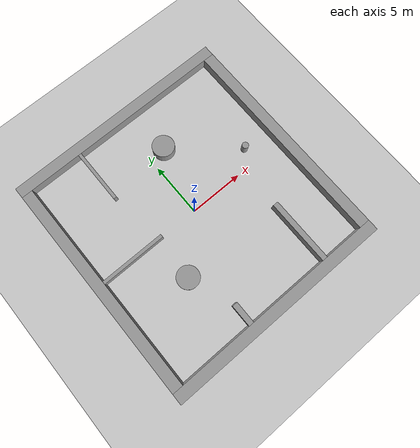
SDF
<sdf version="1.6">
 <world name="default">
  <light name="sun" type="directional">
   <pose>0 0 10 0 -0 0</pose>
   <diffuse>0.8 0.8 0.8 1</diffuse>
   <specular>0.1 0.1 0.1 1</specular>
   <attenuation>
    <range>1000</range>
    <constant>0.9</constant>
    <linear>0.01</linear>
    <quadratic>0.001</quadratic>
   </attenuation>
   <direction>-0.5 0.5 -1</direction>
  </light>
  <model name="ground_plane">
   <static>1</static>
   <link name="link">
    <collision name="collision">
     <geometry><plane><normal>0 0 1</normal><size>100 100</size></plane></geometry>
     <surface><friction><ode><mu>100</mu><mu2>50</mu2></ode></friction></surface>
    </collision>
    <visual name="visual">
     <cast_shadows>0</cast_shadows>
     <geometry><plane><normal>0 0 1</normal><size>100 100</size></plane></geometry>
     <material>
      <script><uri>file://media/materials/scripts/gazebo.material</uri><name>Gazebo/Grey</name></script>
     </material>
    </visual>
    <gravity>0</gravity>
   </link>
  </model>
  <gravity>0 0 -9.8</gravity>
  <magnetic_field>6e-06 2.3e-05 -4.2e-05</magnetic_field>
  <atmosphere type="adiabatic"/>
  <physics name="default_physics" default="0" type="ode">
   <max_step_size>0.001</max_step_size>
   <real_time_factor>1</real_time_factor>
   <real_time_update_rate>1000</real_time_update_rate>
  </physics>
  <scene><ambient>0.4 0.4 0.4 1</ambient><background>0.7 0.7 0.7 1</background><shadows>1</shadows></scene>
  <spherical_coordinates>
   <surface_model>EARTH_WGS84</surface_model>
   <latitude_deg>0</latitude_deg>
   <longitude_deg>0</longitude_deg>
   <elevation>0</elevation>
   <heading_deg>0</heading_deg>
  </spherical_coordinates>
  <model name="left_wall">
   <pose>10 0 0.5 0 -0 0</pose>
   <link name="link">
    <inertial>
     <mass>100</mass>
     <inertia><ixx>16.6667</ixx><ixy>0</ixy><ixz>0</ixz><iyy>16.6667</iyy><iyz>0</iyz><izz>16.6667</izz></inertia>
    </inertial>
    <collision name="collision"><geometry><box><size>1 20 1</size></box></geometry></collision>
    <visual name="visual">
     <geometry><box><size>1 20 1</size></box></geometry>
     <material>
      <script><name>Gazebo/Grey</name><uri>file://media/materials/scripts/gazebo.material</uri></script>
     </material>
    </visual>
    <gravity>0</gravity>
   </link>
  </model>
  <model name="right_wall">
   <pose>-10 0 0.5 0 0 0</pose>
   <link name="link">
    <inertial>
     <mass>100</mass>
     <inertia><ixx>16.6667</ixx><ixy>0</ixy><ixz>0</ixz><iyy>16.6667</iyy><iyz>0</iyz><izz>16.6667</izz></inertia>
    </inertial>
    <collision name="collision"><geometry><box><size>1 20 1</size></box></geometry></collision>
    <visual name="visual">
     <geometry><box><size>1 20 1</size></box></geometry>
     <material>
      <script><name>Gazebo/Grey</name><uri>file://media/materials/scripts/gazebo.material</uri></script>
     </material>
    </visual>
    <gravity>0</gravity>
   </link>
  </model>
  <model name="top_wall">
   <pose>0 10.5 0.5 0 -0 0</pose>
   <link name="link">
    <inertial>
     <mass>100</mass>
     <inertia><ixx>16.6667</ixx><ixy>0</ixy><ixz>0</ixz><iyy>16.6667</iyy><iyz>0</iyz><izz>16.6667</izz></inertia>
    </inertial>
    <collision name="collision"><geometry><box><size>21 1 1</size></box></geometry></collision>
    <visual name="visual">
     <geometry><box><size>21 1 1</size></box></geometry>
     <material>
      <script><name>Gazebo/Grey</name><uri>file://media/materials/scripts/gazebo.material</uri></script>
     </material>
    </visual>
    <gravity>0</gravity>
   </link>
  </model>
  <model name="bottom_wall">
   <pose>0 -10.5 0.5 0 -0 0</pose>
   <link name="link">
    <inertial>
     <mass>100</mass>
     <inertia><ixx>16.6667</ixx><ixy>0</ixy><ixz>0</ixz><iyy>16.6667</iyy><iyz>0</iyz><izz>16.6667</izz></inertia>
    </inertial>
    <collision name="collision"><geometry><box><size>21 1 1</size></box></geometry></collision>
    <visual name="visual">
     <geometry><box><size>21 1 1</size></box></geometry>
     <material>
      <script><name>Gazebo/Grey</name><uri>file://media/materials/scripts/gazebo.material</uri></script>
     </material>
    </visual>
    <gravity>0</gravity>
   </link>
  </model>
  <model name="wall_1">
   <pose>-4.5 7.5 0.5 0 -0 0</pose>
   <link name="link">
    <inertial>
     <mass>100</mass>
     <inertia><ixx>16.6667</ixx><ixy>0</ixy><ixz>0</ixz><iyy>16.6667</iyy><iyz>0</iyz><izz>16.6667</izz></inertia>
    </inertial>
    <collision name="collision"><geometry><box><size>0.3 5 1</size></box></geometry></collision>
    <visual name="visual">
     <geometry><box><size>0.3 5 1</size></box></geometry>
     <material>
      <script><name>Gazebo/Grey</name><uri>file://media/materials/scripts/gazebo.material</uri></script>
     </material>
    </visual>
    <gravity>0</gravity>
   </link>
  </model>
  <model name="wall_2">
   <pose>-6.5 0 0.5 0 -0 0</pose>
   <link name="link">
    <inertial>
     <mass>100</mass>
     <inertia><ixx>16.6667</ixx><ixy>0</ixy><ixz>0</ixz><iyy>16.6667</iyy><iyz>0</iyz><izz>16.6667</izz></inertia>
    </inertial>
    <collision name="collision"><geometry><box><size>6 0.3 1</size></box></geometry></collision>
    <visual name="visual">
     <geometry><box><size>6 0.3 1</size></box></geometry>
     <material>
      <script><name>Gazebo/Grey</name><uri>file://media/materials/scripts/gazebo.material</uri></script>
     </material>
    </visual>
    <gravity>0</gravity>
   </link>
  </model>
  <model name="wall_3">
   <pose>5.5 -7.0 0.5 0 -0 0</pose>
   <link name="link">
    <inertial>
     <mass>100</mass>
     <inertia><ixx>16.6667</ixx><ixy>0</ixy><ixz>0</ixz><iyy>16.6667</iyy><iyz>0</iyz><izz>16.6667</izz></inertia>
    </inertial>
    <collision name="collision"><geometry><box><size>0.5 6 1</size></box></geometry></collision>
    <visual name="visual">
     <geometry><box><size>0.5 6 1</size></box></geometry>
     <material>
      <script><name>Gazebo/Grey</name><uri>file://media/materials/scripts/gazebo.material</uri></script>
     </material>
    </visual>
    <gravity>0</gravity>
   </link>
  </model>
  <model name="wall_4">
   <pose>-2.5 -9.0 0.5 0 -0 0</pose>
   <link name="link">
    <inertial>
     <mass>100</mass>
     <inertia><ixx>16.6667</ixx><ixy>0</ixy><ixz>0</ixz><iyy>16.6667</iyy><iyz>0</iyz><izz>16.6667</izz></inertia>
    </inertial>
    <collision name="collision"><geometry><box><size>0.5 2 1</size></box></geometry></collision>
    <visual name="visual">
     <geometry><box><size>0.5 2 1</size></box></geometry>
     <material>
      <script><name>Gazebo/Grey</name><uri>file://media/materials/scripts/gazebo.material</uri></script>
     </material>
    </visual>
    <gravity>0</gravity>
   </link>
  </model>
  <model name="wall_cylinder">
   <pose>-4 -4 0.5 0 -0 0</pose>
   <link name="link">
    <inertial>
     <mass>100</mass>
     <inertia><ixx>14.5833</ixx><ixy>0</ixy><ixz>0</ixz><iyy>14.5833</iyy><iyz>0</iyz><izz>12.5</izz></inertia>
    </inertial>
    <collision name="collision">
     <geometry><cylinder><radius>1</radius><length>1</length></cylinder></geometry>
    </collision>
    <visual name="visual">
     <geometry><cylinder><radius>1</radius><length>1</length></cylinder></geometry>
     <material>
      <script><name>Gazebo/Grey</name><uri>file://media/materials/scripts/gazebo.material</uri></script>
     </material>
    </visual>
    <gravity>0</gravity>
   </link>
  </model>
  <model name="wall_cylinder_1">
   <pose>7 1.5 0.5 0 -0 0</pose>
   <link name="link">
    <inertial>
     <mass>100</mass>
     <inertia><ixx>14.5833</ixx><ixy>0</ixy><ixz>0</ixz><iyy>14.5833</iyy><iyz>0</iyz><izz>12.5</izz></inertia>
    </inertial>
    <collision name="collision">
     <geometry><cylinder><radius>0.3</radius><length>1</length></cylinder></geometry>
    </collision>
    <visual name="visual">
     <geometry><cylinder><radius>0.3</radius><length>1</length></cylinder></geometry>
     <material>
      <script><name>Gazebo/Grey</name><uri>file://media/materials/scripts/gazebo.material</uri></script>
     </material>
    </visual>
    <gravity>0</gravity>
   </link>
  </model>
  <model name="wall_cylinder_2">
   <pose>1.5 6 0.5 0 -0 0</pose>
   <link name="link">
    <inertial>
     <mass>100</mass>
     <inertia><ixx>14.5833</ixx><ixy>0</ixy><ixz>0</ixz><iyy>14.5833</iyy><iyz>0</iyz><izz>12.5</izz></inertia>
    </inertial>
    <collision name="collision">
     <geometry><cylinder><radius>1</radius><length>1</length></cylinder></geometry>
    </collision>
    <visual name="visual">
     <geometry><cylinder><radius>1</radius><length>1</length></cylinder></geometry>
     <material>
      <script><name>Gazebo/Grey</name><uri>file://media/materials/scripts/gazebo.material</uri></script>
     </material>
    </visual>
    <gravity>0</gravity>
   </link>
  </model>
 </world>
</sdf>
